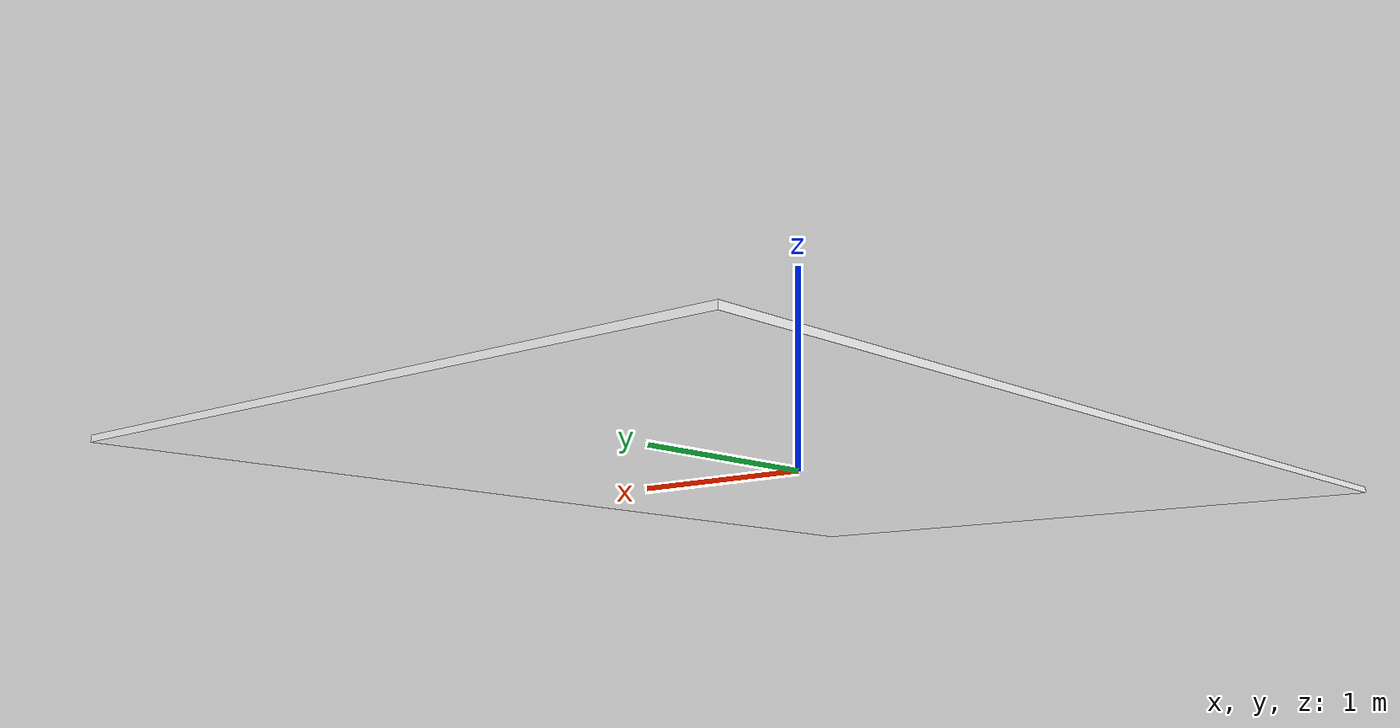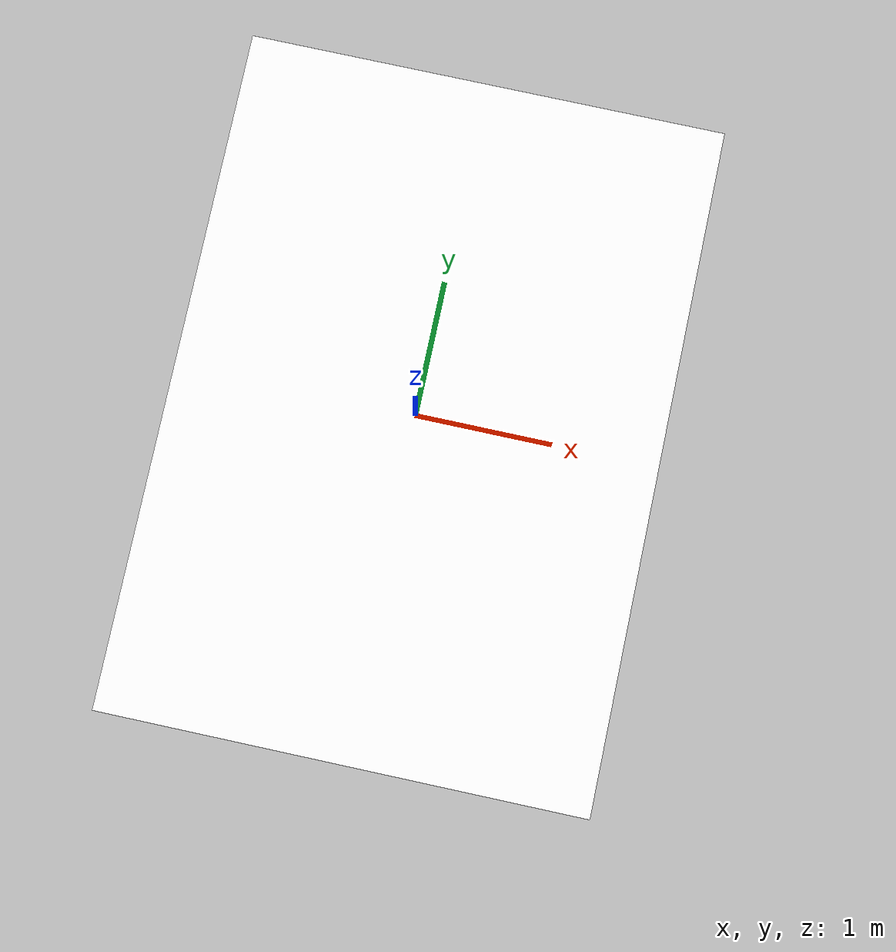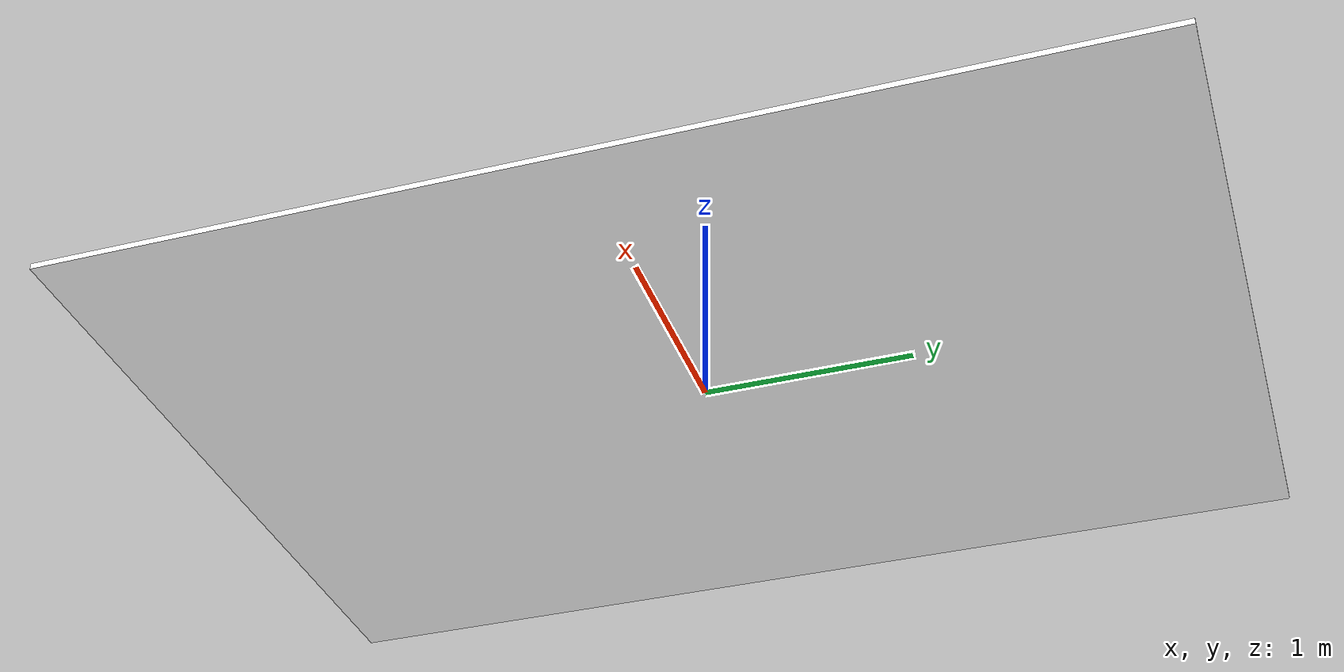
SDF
<?xml version="1.0"?>
<sdf version="1.9">
  <model name="qr_panel_big">
    <static>true</static>
    <link name="panel">
      <pose>0 0 0.02 0 0 0</pose>
      <visual name="face">
        <geometry>
          <box><size>3.564 5.04 0.03</size></box>
        </geometry>
        <material>
          <diffuse>1 1 1 1</diffuse>
          <specular>0.05 0.05 0.05 1</specular>
          <pbr>
            <metal>
              <albedo_map>model://qr_panel_big/materials/textures/qr.png</albedo_map>
            </metal>
          </pbr>
        </material>
      </visual>
      <collision name="surface">
        <geometry>
          <box><size>3.564 5.04 0.03</size></box>
        </geometry>
      </collision>
    </link>
  </model>
</sdf>
